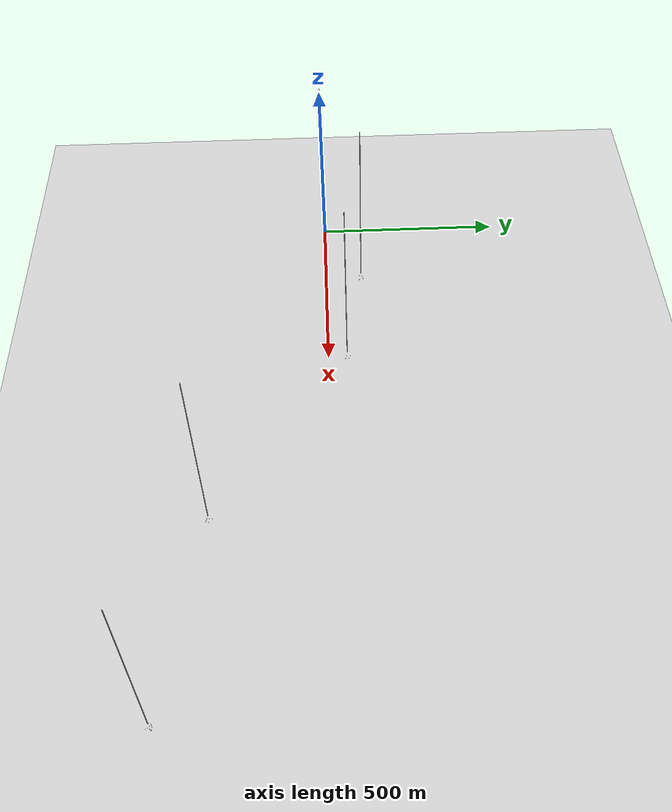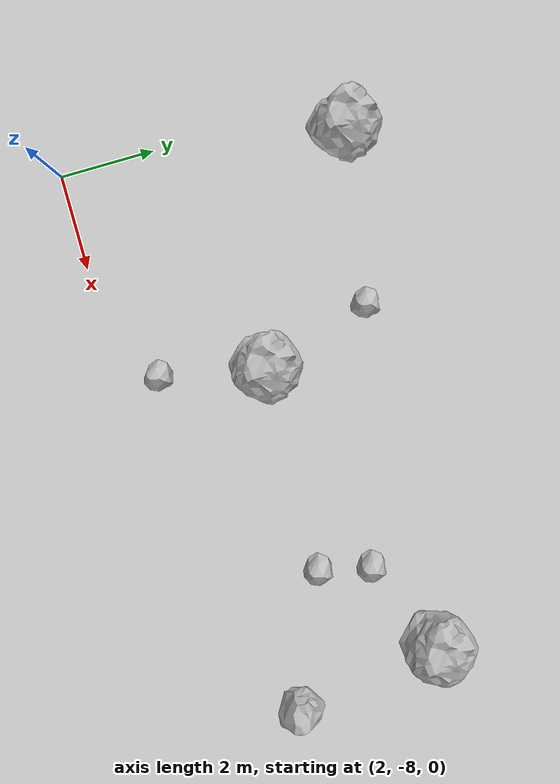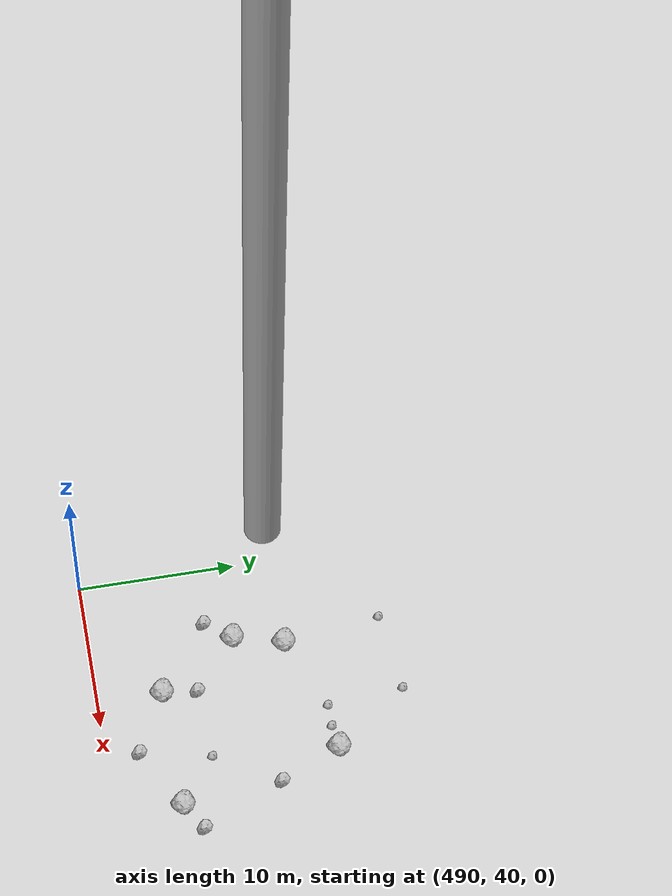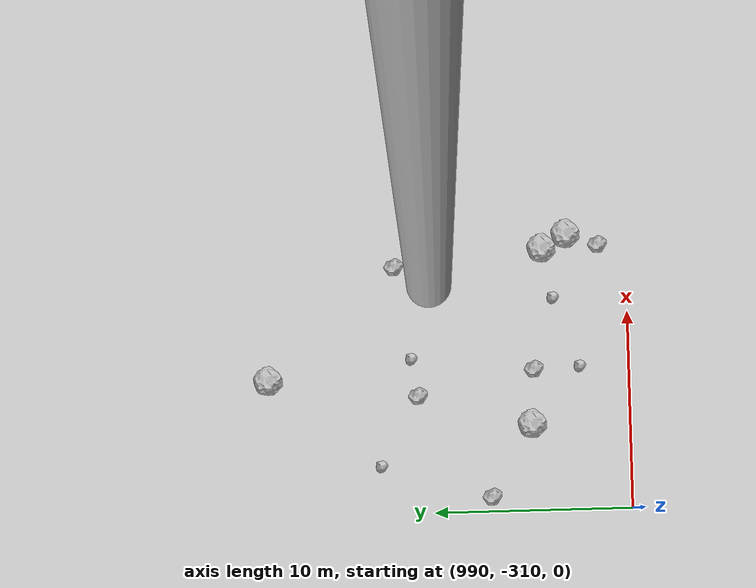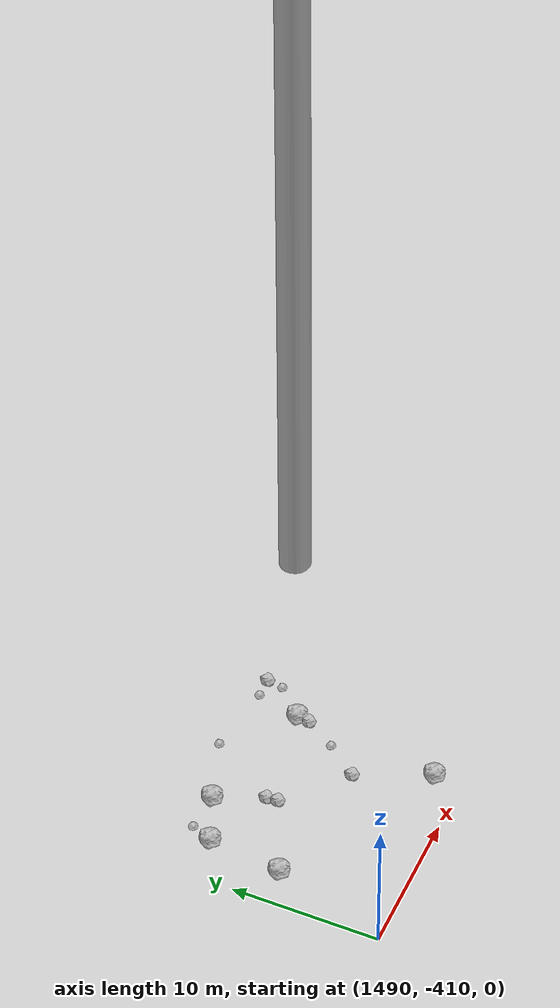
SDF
<?xml version="1.0" ?>
<sdf version="1.6">
  <world name="default">

    <include>
      <uri>model://custom_ground</uri>
    </include>

    <include>
      <uri>model://sun</uri>
    </include>

    <spherical_coordinates>
      <surface_model>EARTH_WGS84</surface_model>
      <latitude_deg>38.161479</latitude_deg>
      <longitude_deg>-122.454630</longitude_deg>
      <elevation>488.0</elevation>
      <heading_deg>90</heading_deg>
    </spherical_coordinates>

    <model name="rock1_0_0">
      <include>
        <uri>model://rock1</uri>
        <pose>2.7609476429966406 -2.1008977076128783 0.5 0 0 0</pose>
      </include>
    </model>
    <model name="rock1_0_1">
      <include>
        <uri>model://rock1</uri>
        <pose>16.113879358514435 4.736918349802568 0.5 0 0 0</pose>
      </include>
    </model>
    <model name="rock1_0_2">
      <include>
        <uri>model://rock1</uri>
        <pose>18.91820570202381 0.7831065585861339 0.5 0 0 0</pose>
      </include>
    </model>
    <model name="rock1_0_3">
      <include>
        <uri>model://rock1</uri>
        <pose>7.009766031397446 -4.961714306304801 0.5 0 0 0</pose>
      </include>
    </model>
    <model name="rock1_0_4">
      <include>
        <uri>model://rock1</uri>
        <pose>13.423546364980442 -3.161771693159894 0.5 0 0 0</pose>
      </include>
    </model>
    <model name="rock2_0_0">
      <include>
        <uri>model://rock2</uri>
        <pose>8.016865128709153 3.5078086562349995 0.3 0 0 0</pose>
      </include>
    </model>
    <model name="rock2_0_1">
      <include>
        <uri>model://rock2</uri>
        <pose>12.62936159790873 3.5829731993724288 0.3 0 0 0</pose>
      </include>
    </model>
    <model name="rock2_0_2">
      <include>
        <uri>model://rock2</uri>
        <pose>13.942530074367724 -6.201062012423504 0.3 0 0 0</pose>
      </include>
    </model>
    <model name="rock2_0_3">
      <include>
        <uri>model://rock2</uri>
        <pose>18.590202676105726 2.5748321305540482 0.3 0 0 0</pose>
      </include>
    </model>
    <model name="rock2_0_4">
      <include>
        <uri>model://rock2</uri>
        <pose>6.21235534752784 4.829375138016594 0.3 0 0 0</pose>
      </include>
    </model>
    <model name="rock3_0_0">
      <include>
        <uri>model://rock3</uri>
        <pose>6.270704442289463 -2.648180117569428 0.2 0 0 0</pose>
      </include>
    </model>
    <model name="rock3_0_1">
      <include>
        <uri>model://rock3</uri>
        <pose>10.700668101956307 9.236162541957526 0.2 0 0 0</pose>
      </include>
    </model>
    <model name="rock3_0_2">
      <include>
        <uri>model://rock3</uri>
        <pose>11.292844621667745 -5.09807155289181 0.2 0 0 0</pose>
      </include>
    </model>
    <model name="rock3_0_3">
      <include>
        <uri>model://rock3</uri>
        <pose>11.533660494629089 -4.019413018650959 0.2 0 0 0</pose>
      </include>
    </model>
    <model name="rock3_0_4">
      <include>
        <uri>model://rock3</uri>
        <pose>6.5419492970921445 -7.178043440839588 0.2 0 0 0</pose>
      </include>
    </model>
    <model name="rock1_1_0">
      <include>
        <uri>model://rock1</uri>
        <pose>193.96839012869685 92.74851400610773 0.5 0 0 0</pose>
      </include>
    </model>
    <model name="rock1_1_1">
      <include>
        <uri>model://rock1</uri>
        <pose>203.6547107084342 106.9740564089266 0.5 0 0 0</pose>
      </include>
    </model>
    <model name="rock1_1_2">
      <include>
        <uri>model://rock1</uri>
        <pose>207.85894848409964 94.3513906498792 0.5 0 0 0</pose>
      </include>
    </model>
    <model name="rock1_1_3">
      <include>
        <uri>model://rock1</uri>
        <pose>204.0308135174772 98.50824357188462 0.5 0 0 0</pose>
      </include>
    </model>
    <model name="rock1_1_4">
      <include>
        <uri>model://rock1</uri>
        <pose>190.83221700907754 97.22812468396654 0.5 0 0 0</pose>
      </include>
    </model>
    <model name="rock2_1_0">
      <include>
        <uri>model://rock2</uri>
        <pose>201.16862769886092 105.19240892386503 0.3 0 0 0</pose>
      </include>
    </model>
    <model name="rock2_1_1">
      <include>
        <uri>model://rock2</uri>
        <pose>194.640150808136 100.71544274772518 0.3 0 0 0</pose>
      </include>
    </model>
    <model name="rock2_1_2">
      <include>
        <uri>model://rock2</uri>
        <pose>197.527202347451 92.05762125617741 0.3 0 0 0</pose>
      </include>
    </model>
    <model name="rock2_1_3">
      <include>
        <uri>model://rock2</uri>
        <pose>203.8530185965784 94.28337956408599 0.3 0 0 0</pose>
      </include>
    </model>
    <model name="rock2_1_4">
      <include>
        <uri>model://rock2</uri>
        <pose>205.37042854220272 95.86238566127136 0.3 0 0 0</pose>
      </include>
    </model>
    <model name="rock3_1_0">
      <include>
        <uri>model://rock3</uri>
        <pose>204.11946245260575 108.8910173212112 0.2 0 0 0</pose>
      </include>
    </model>
    <model name="rock3_1_1">
      <include>
        <uri>model://rock3</uri>
        <pose>192.67424492876702 103.95544310600604 0.2 0 0 0</pose>
      </include>
    </model>
    <model name="rock3_1_2">
      <include>
        <uri>model://rock3</uri>
        <pose>191.40250336488023 98.275286497279 0.2 0 0 0</pose>
      </include>
    </model>
    <model name="rock3_1_3">
      <include>
        <uri>model://rock3</uri>
        <pose>200.70254026441808 95.88750191956166 0.2 0 0 0</pose>
      </include>
    </model>
    <model name="rock3_1_4">
      <include>
        <uri>model://rock3</uri>
        <pose>191.29530308246873 103.14181232230133 0.2 0 0 0</pose>
      </include>
    </model>
    <model name="rock1_2_0">
      <include>
        <uri>model://rock1</uri>
        <pose>496.22520030781885 52.11873646213071 0.5 0 0 0</pose>
      </include>
    </model>
    <model name="rock1_2_1">
      <include>
        <uri>model://rock1</uri>
        <pose>495.3533064902543 48.982903209316014 0.5 0 0 0</pose>
      </include>
    </model>
    <model name="rock1_2_2">
      <include>
        <uri>model://rock1</uri>
        <pose>504.0224528381687 54.12075828638295 0.5 0 0 0</pose>
      </include>
    </model>
    <model name="rock1_2_3">
      <include>
        <uri>model://rock1</uri>
        <pose>498.458253627729 44.0424417434688 0.5 0 0 0</pose>
      </include>
    </model>
    <model name="rock1_2_4">
      <include>
        <uri>model://rock1</uri>
        <pose>506.2080702218698 44.13992172170273 0.5 0 0 0</pose>
      </include>
    </model>
    <model name="rock2_2_0">
      <include>
        <uri>model://rock2</uri>
        <pose>498.65292860743483 46.24333973223008 0.3 0 0 0</pose>
      </include>
    </model>
    <model name="rock2_2_1">
      <include>
        <uri>model://rock2</uri>
        <pose>502.27288729374493 42.065082859719375 0.3 0 0 0</pose>
      </include>
    </model>
    <model name="rock2_2_2">
      <include>
        <uri>model://rock2</uri>
        <pose>507.8851786689468 45.18861060087457 0.3 0 0 0</pose>
      </include>
    </model>
    <model name="rock2_2_3">
      <include>
        <uri>model://rock2</uri>
        <pose>493.96462356683446 47.3799519075363 0.3 0 0 0</pose>
      </include>
    </model>
    <model name="rock2_2_4">
      <include>
        <uri>model://rock2</uri>
        <pose>505.63159765380317 50.32020849018451 0.3 0 0 0</pose>
      </include>
    </model>
    <model name="rock3_2_0">
      <include>
        <uri>model://rock3</uri>
        <pose>500.5812408188704 58.81182789346684 0.2 0 0 0</pose>
      </include>
    </model>
    <model name="rock3_2_1">
      <include>
        <uri>model://rock3</uri>
        <pose>503.21134889405954 46.398116094158475 0.2 0 0 0</pose>
      </include>
    </model>
    <model name="rock3_2_2">
      <include>
        <uri>model://rock3</uri>
        <pose>500.9784737824173 54.0068499898969 0.2 0 0 0</pose>
      </include>
    </model>
    <model name="rock3_2_3">
      <include>
        <uri>model://rock3</uri>
        <pose>502.43269295200264 53.964915074478384 0.2 0 0 0</pose>
      </include>
    </model>
    <model name="rock3_2_4">
      <include>
        <uri>model://rock3</uri>
        <pose>495.32122515542187 58.3531548916384 0.2 0 0 0</pose>
      </include>
    </model>
    <model name="rock1_3_0">
      <include>
        <uri>model://rock1</uri>
        <pose>1005.7574620281762 -299.5578676159703 0.5 0 0 0</pose>
      </include>
    </model>
    <model name="rock1_3_1">
      <include>
        <uri>model://rock1</uri>
        <pose>1003.3079960399526 -305.6945549028732 0.5 0 0 0</pose>
      </include>
    </model>
    <model name="rock1_3_2">
      <include>
        <uri>model://rock1</uri>
        <pose>1004.0068156673675 -306.93111191965284 0.5 0 0 0</pose>
      </include>
    </model>
    <model name="rock1_3_3">
      <include>
        <uri>model://rock1</uri>
        <pose>996.9037269645132 -291.71485191839685 0.5 0 0 0</pose>
      </include>
    </model>
    <model name="rock1_3_4">
      <include>
        <uri>model://rock1</uri>
        <pose>994.4215894205545 -305.01128841350794 0.5 0 0 0</pose>
      </include>
    </model>
    <model name="rock2_3_0">
      <include>
        <uri>model://rock2</uri>
        <pose>1002.5209313677949 -298.1878651952709 0.3 0 0 0</pose>
      </include>
    </model>
    <model name="rock2_3_1">
      <include>
        <uri>model://rock2</uri>
        <pose>990.7693653105862 -302.9090540378963 0.3 0 0 0</pose>
      </include>
    </model>
    <model name="rock2_3_2">
      <include>
        <uri>model://rock2</uri>
        <pose>997.1791039222888 -305.16260882086146 0.3 0 0 0</pose>
      </include>
    </model>
    <model name="rock2_3_3">
      <include>
        <uri>model://rock2</uri>
        <pose>1003.4294981429679 -308.5530897537365 0.3 0 0 0</pose>
      </include>
    </model>
    <model name="rock2_3_4">
      <include>
        <uri>model://rock2</uri>
        <pose>995.953835173976 -299.26987242460297 0.3 0 0 0</pose>
      </include>
    </model>
    <model name="rock3_3_0">
      <include>
        <uri>model://rock3</uri>
        <pose>1000.7575089487 -306.23470695106494 0.2 0 0 0</pose>
      </include>
    </model>
    <model name="rock3_3_1">
      <include>
        <uri>model://rock3</uri>
        <pose>997.2595555115906 -307.5126999563738 0.2 0 0 0</pose>
      </include>
    </model>
    <model name="rock3_3_2">
      <include>
        <uri>model://rock3</uri>
        <pose>1002.9616464814428 -299.1719767892636 0.2 0 0 0</pose>
      </include>
    </model>
    <model name="rock3_3_3">
      <include>
        <uri>model://rock3</uri>
        <pose>997.8180116380315 -298.98949719430175 0.2 0 0 0</pose>
      </include>
    </model>
    <model name="rock3_3_4">
      <include>
        <uri>model://rock3</uri>
        <pose>992.4156576148958 -297.3670242045216 0.2 0 0 0</pose>
      </include>
    </model>
    <model name="rock1_4_0">
      <include>
        <uri>model://rock1</uri>
        <pose>1493.0139908315257 -397.10880993324224 0.5 0 0 0</pose>
      </include>
    </model>
    <model name="rock1_4_1">
      <include>
        <uri>model://rock1</uri>
        <pose>1503.8300575032463 -408.11597957297437 0.5 0 0 0</pose>
      </include>
    </model>
    <model name="rock1_4_2">
      <include>
        <uri>model://rock1</uri>
        <pose>1504.9774303873976 -397.9035516158527 0.5 0 0 0</pose>
      </include>
    </model>
    <model name="rock1_4_3">
      <include>
        <uri>model://rock1</uri>
        <pose>1496.313898153612 -395.7301539627765 0.5 0 0 0</pose>
      </include>
    </model>
    <model name="rock1_4_4">
      <include>
        <uri>model://rock1</uri>
        <pose>1492.4257714713112 -402.1744453074996 0.5 0 0 0</pose>
      </include>
    </model>
    <model name="rock2_4_0">
      <include>
        <uri>model://rock2</uri>
        <pose>1504.8144871513098 -398.7576497969842 0.3 0 0 0</pose>
      </include>
    </model>
    <model name="rock2_4_1">
      <include>
        <uri>model://rock2</uri>
        <pose>1501.6849207171035 -403.1783432260764 0.3 0 0 0</pose>
      </include>
    </model>
    <model name="rock2_4_2">
      <include>
        <uri>model://rock2</uri>
        <pose>1507.1223162621204 -394.7572218678865 0.3 0 0 0</pose>
      </include>
    </model>
    <model name="rock2_4_3">
      <include>
        <uri>model://rock2</uri>
        <pose>1497.6732101141295 -398.893582555701 0.3 0 0 0</pose>
      </include>
    </model>
    <model name="rock2_4_4">
      <include>
        <uri>model://rock2</uri>
        <pose>1497.7333339287277 -399.6765022404236 0.3 0 0 0</pose>
      </include>
    </model>
    <model name="rock3_4_0">
      <include>
        <uri>model://rock3</uri>
        <pose>1503.4981260652514 -400.9484195085855 0.2 0 0 0</pose>
      </include>
    </model>
    <model name="rock3_4_1">
      <include>
        <uri>model://rock3</uri>
        <pose>1493.6158152302223 -395.6142607764271 0.2 0 0 0</pose>
      </include>
    </model>
    <model name="rock3_4_2">
      <include>
        <uri>model://rock3</uri>
        <pose>1505.728243365394 -394.81764040780155 0.2 0 0 0</pose>
      </include>
    </model>
    <model name="rock3_4_3">
      <include>
        <uri>model://rock3</uri>
        <pose>1506.9470943976785 -395.9246025031828 0.2 0 0 0</pose>
      </include>
    </model>
    <model name="rock3_4_4">
      <include>
        <uri>model://rock3</uri>
        <pose>1500.7272868896662 -394.1847243605471 0.2 0 0 0</pose>
      </include>
    </model>

    <model name="cylinder_1">
      <static>true</static>
      <link name="link">
        <visual name="visual">
          <geometry>
            <cylinder>
              <radius>1</radius>
              <length>500</length>
            </cylinder>
          </geometry>
        </visual>
      </link>
      <pose>10 0 270 0 0 0</pose>
    </model>

    <model name="cylinder_2">
      <static>true</static>
      <link name="link">
        <visual name="visual">
          <geometry>
            <cylinder>
              <radius>1</radius>
              <length>500</length>
            </cylinder>
          </geometry>
        </visual>
      </link>
      <pose>200 100 270 0 0 0</pose>
    </model>

    <model name="cylinder_3">
      <static>true</static>
      <link name="link">
        <visual name="visual">
          <geometry>
            <cylinder>
              <radius>1</radius>
              <length>500</length>
            </cylinder>
          </geometry>
        </visual>
      </link>
      <pose>500 50 270 0 0 0</pose>
    </model>

    <model name="cylinder_4">
      <static>true</static>
      <link name="link">
        <visual name="visual">
          <geometry>
            <cylinder>
              <radius>1</radius>
              <length>500</length>
            </cylinder>
          </geometry>
        </visual>
      </link>
      <pose>1000 -300 270 0 0 0</pose>
    </model>

    <model name="cylinder_5">
      <static>true</static>
      <link name="link">
        <visual name="visual">
          <geometry>
            <cylinder>
              <radius>1</radius>
              <length>500</length>
            </cylinder>
          </geometry>
        </visual>
      </link>
      <pose>1500 -400 270 0 0 0</pose>
    </model>

  </world>
</sdf>

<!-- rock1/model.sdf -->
<sdf version="1.6">
  <model name="rock1">
    <static>true</static> <!-- Set to true if the model should not move -->
    <pose>0 0 0 0 0 0</pose>

    <!--z offset is 0.5 for full scale-->

    <link name="link">
      <collision name="rock1_collision">
        <geometry>
          <mesh>
            <uri>model://meshes/rock1.dae</uri>
          </mesh>
        </geometry>
      </collision>
      <visual name="rock1_visual">
        <geometry>
          <mesh>
            <uri>model://meshes/rock1.dae</uri>
          </mesh>
        </geometry>
        <material>
          <script>
            <uri>model://materials/scripts/sand_pebbles.material</uri>
            <name>custom_ground/Image</name>
          </script>
        </material>
      </visual>
    </link>
  </model>
</sdf>

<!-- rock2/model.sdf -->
<sdf version="1.6">
  <model name="rock2">
    <static>true</static> <!-- Set to true if the model should not move -->
    <pose>0 0 0 0 0 0</pose>

    <!--z offset is 0.3 for full scale-->

    <link name="link">
      <collision name="rock2_collision">
        <geometry>
          <mesh>
            <uri>model://meshes/rock2.dae</uri>
          </mesh>
        </geometry>
      </collision>
      <visual name="rock2_visual">
        <geometry>
          <mesh>
            <uri>model://meshes/rock2.dae</uri>
          </mesh>
        </geometry>
        <material>
          <script>
            <uri>model://materials/scripts/sand_pebbles.material</uri>
            <name>custom_ground/Image</name>
          </script>
        </material>
      </visual>
    </link>
  </model>
</sdf>

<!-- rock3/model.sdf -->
<sdf version="1.6">
  <model name="rock3">
    <static>true</static> <!-- Set to true if the model should not move -->
    <pose>0 0 0 0 0 0</pose>

    <!--z offset is 0.2 for full scale-->

    <link name="link">
      <collision name="rock3_collision">
        <geometry>
          <mesh>
            <uri>model://meshes/rock3.dae</uri>
          </mesh>
        </geometry>
      </collision>
      <visual name="rock3_visual">
        <geometry>
          <mesh>
            <uri>model://meshes/rock3.dae</uri>
          </mesh>
        </geometry>
        <material>
          <script>
            <uri>model://materials/scripts/sand_pebbles.material</uri>
            <name>custom_ground/Image</name>
          </script>
        </material>
      </visual>
    </link>
  </model>
</sdf>

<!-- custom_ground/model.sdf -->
<sdf version="1.6">
  <model name="custom_ground">
    <static>true</static> <!-- Ground is static and immovable -->
    <link name="ground_link">
      <pose>240 0 0 0 0 0</pose> <!-- Position and orientation relative to the world -->
      <!-- Visual Representation -->
      <visual name="ground_visual">
        <geometry>
          <plane>
            <normal>0 0 1</normal> <!-- Upward facing plane -->
            <size>500 500</size> <!-- Size of the plane -->
          </plane>
        </geometry>
        <material>
          <script>
            <uri>model://materials/scripts/sand_pebbles.material</uri>
            <name>custom_ground/Image</name>
          </script>
        </material>
      </visual>

      <!-- Collision Representation -->
      <collision name="ground_collision">
        <geometry>
          <plane>
            <normal>0 0 1</normal>
            <size>100 100</size>
          </plane>
        </geometry>
      </collision>

    </link>
  </model>
</sdf>
